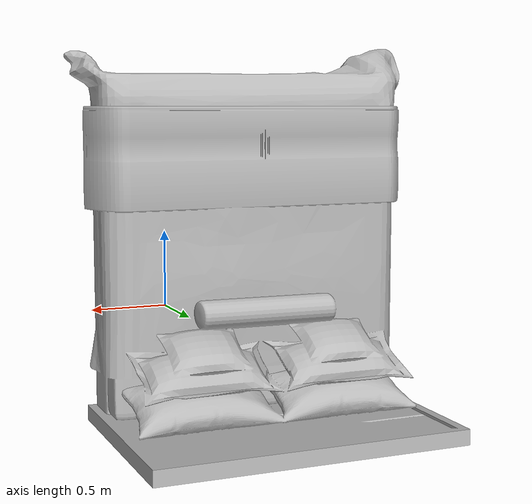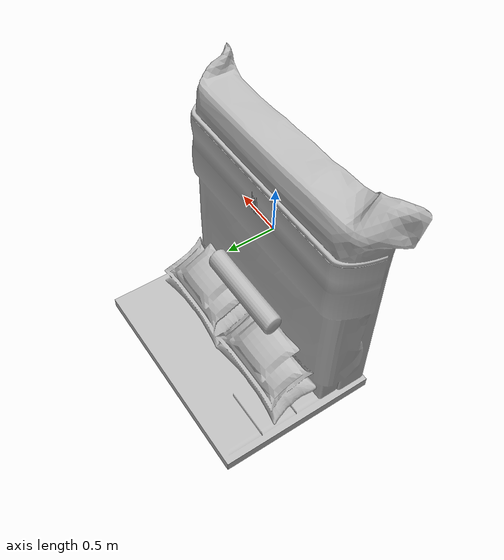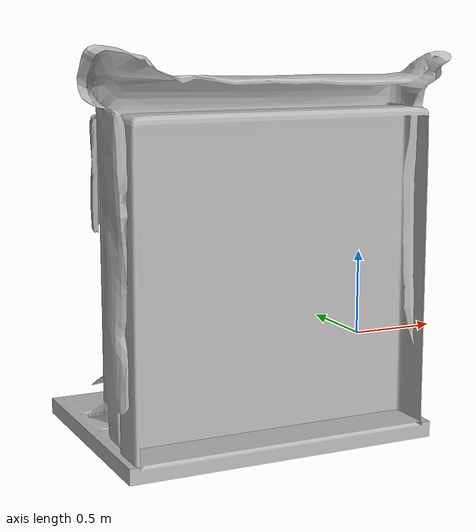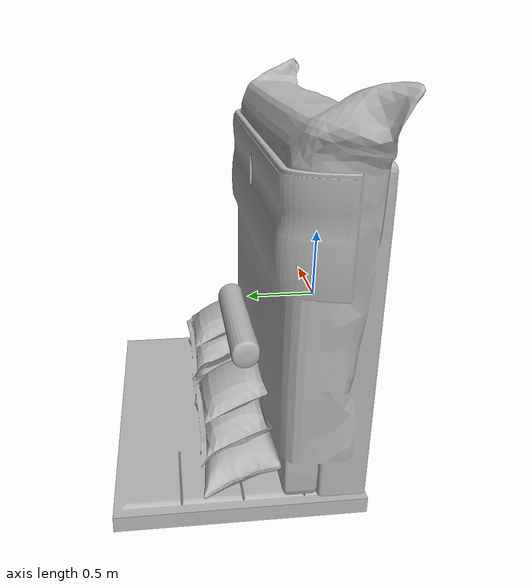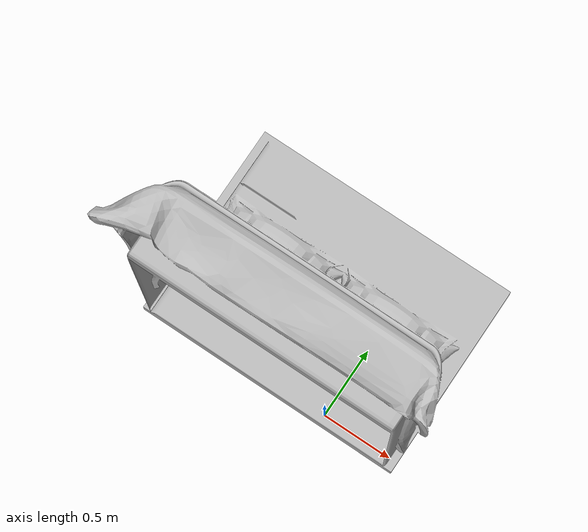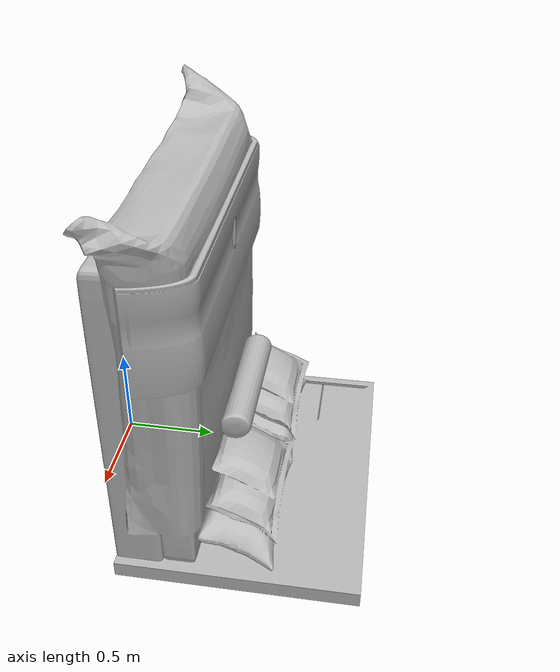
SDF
<?xml version="1.0" ?>
<sdf version="1.5">
  <model name="bed_king_1">
    <link name="link">
      <pose>0 0 0 0 0 0</pose>
      <collision name="collision">
        <geometry>
          <mesh>
            <uri>model://bed_king_1/meshes/model.dae</uri>
          </mesh>
        </geometry>
      </collision>
      <visual name="visual">
        <geometry>
          <mesh>
            <uri>model://bed_king_1/meshes/model.dae</uri>
          </mesh>
        </geometry>
      </visual>
    </link>
    <static>1</static>
  </model>
</sdf>
